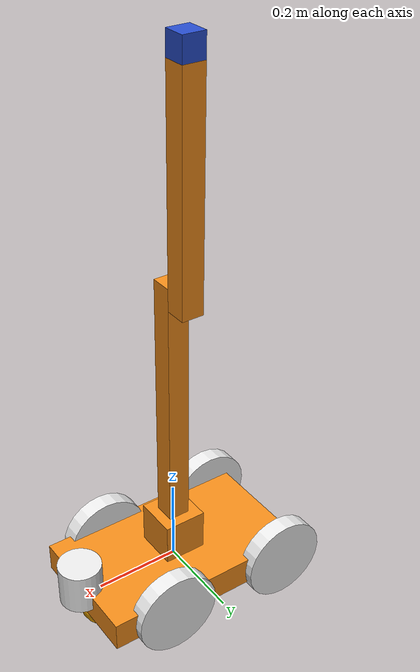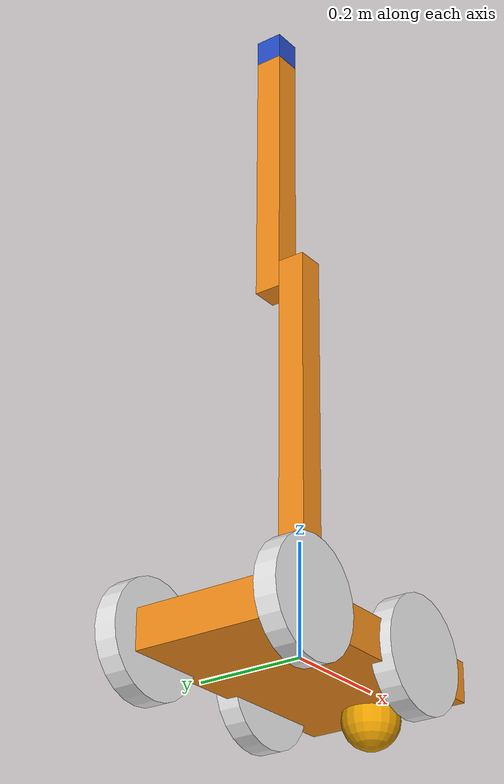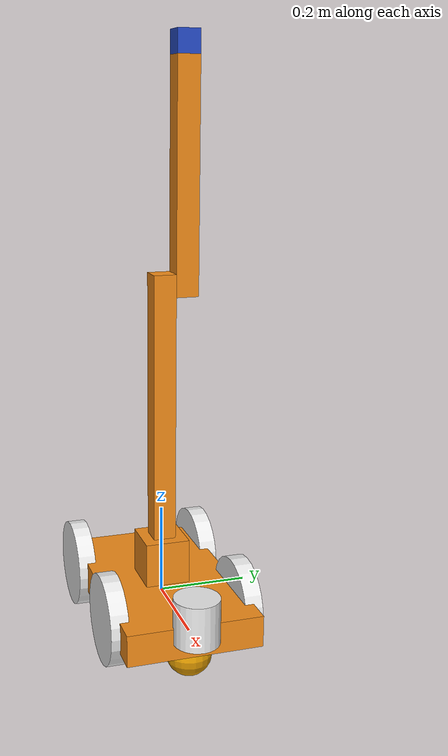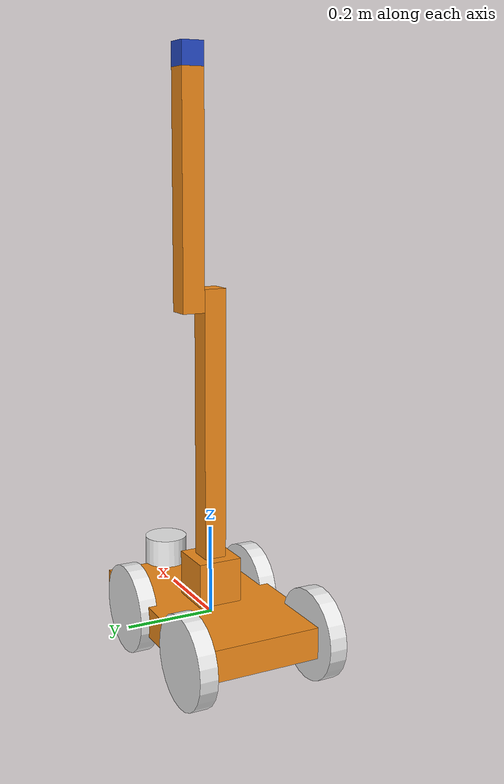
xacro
<?xml version="1.0"?>
<robot name="my_robot_xacro" xmlns:xacro="http://www.ros.org/wiki/xacro">

 <xacro:include filename="$(find assignment2)/urdf/my_robot.gazebo"/>
  <xacro:include filename="$(find assignment2)/urdf/materials.xacro" />

 <xacro:property name="length_wheel" value="0.04" />
 <xacro:property name="radius_wheel" value="0.1" />

<!-- Inertia values -->
<xacro:macro name="default_inertial" params="mass">
               <inertial>
                       <mass value="${mass}" />
                       <origin rpy="0 1.5707 1.5707" xyz="0 0 0"/>
                       <inertia ixx="0.000526666666667" ixy="0" ixz="0" iyy="0.000526666666667" iyz="0" izz="0.001"/>
               </inertial>
	</xacro:macro>
 <xacro:macro name="cylinder_inertia" params="mass r l">
    <inertia ixx="${mass*(3*r*r+l*l)/12}" ixy = "0" ixz = "0"
                iyy="${mass*(3*r*r+l*l)/12}" iyz = "0" izz="${mass*(r*r)/2}" />
 </xacro:macro>

 <!-- h(eight) d(epth) w(idth) -->
 <xacro:macro name="box_inertia" params="mass h d w">
    <inertia ixx="${mass*(h*h+d*d)/12}" ixy = "0" ixz = "0"
                iyy="${mass*(h*h+w*w)/12}" iyz = "0" izz="${mass*(d*d+w*w)/12}" />
 </xacro:macro>

 <xacro:macro name="wheel_geometry">
	<geometry>
       	<cylinder length="${length_wheel}" radius="${radius_wheel}"/>
     	</geometry>
 </xacro:macro>

 <link name="link_chassis">
    <!-- pose and inertial -->
    <pose>0 0 0.1 0 0 0</pose>
    <inertial>
      <mass value="30"/>
      <origin rpy="0 0 0" xyz="0 0 0.1"/>
      <xacro:box_inertia mass="30" h="0.07" d="0.3" w="0.5" />
    </inertial>
    <!-- body -->
    <collision name="collision_chassis">
    <!-- order: w(idth) d(epth) h(eight) -->
      <geometry>
        <box size="0.5 0.3 0.07"/>
      </geometry>
    </collision>
    <visual>
      <origin rpy="0 0 0" xyz="0 0 0"/>
      <geometry>
        <box size="0.5 0.3 0.07"/>
      </geometry>
      <material name="orange"/>
    </visual>

   <!-- caster front -->
    <collision name="caster_front_collision">
      <origin rpy=" 0 0 0" xyz="0.35 0 -0.05"/>
      <geometry>
        <sphere radius="0.05"/>
      </geometry>
    </collision>
    <visual name="caster_front_visual">
      <origin rpy=" 0 0 0" xyz="0.2 0 -0.05"/>
      <geometry>
        <sphere radius="0.05"/>
      </geometry>
    </visual>
  </link>

  <xacro:macro name="link_wheel" params="name">
          <link name="${name}">
              <inertial>
                <mass value="0.2"/>
                <origin rpy="0 1.5707 1.5707" xyz="0 0 0"/>
                <xacro:cylinder_inertia mass="0.2" r="0.1" l="0.04" />
              </inertial>
              <collision name="link_rightW_front_collision">
                <origin rpy="0 1.5707 1.5707" xyz="0 0 0"/>
                <xacro:wheel_geometry />
              </collision>
              <visual name="${name}_visual">
                <origin rpy="0 1.5707 1.5707" xyz="0 0 0"/>
                <xacro:wheel_geometry />
                <material name="white"/>
              </visual>
          </link>
      </xacro:macro>

   <!-- Create wheels -->

   <xacro:link_wheel name="link_rightW_front" />
   <xacro:link_wheel name="link_rightW_back" />
   <xacro:link_wheel name="link_leftW_front" />
   <xacro:link_wheel name="link_leftW_back" />

  <!-- arm definition -->

  <link name="base_link">
    <!-- body -->
    <inertial>
      <mass value="0.05"/>
      <origin rpy="0 0 0" xyz="0 0 0.05"/>
      <xacro:box_inertia mass="0.05" h="0.1" d="0.1" w="0.1" />
    </inertial>
    <collision name="collision_base_link">
      <geometry>
        <box size="0.1 0.1 0.1"/>
      </geometry>
    </collision>
    <visual>
      <origin rpy="0 0 0" xyz="0 0 0.05"/>
      <geometry>
        <box size="0.1 0.1 0.1"/>
      </geometry>
      <material name="orange"/>
    </visual>

  </link>

  <link name="link_1">
    <!-- body -->
    <inertial>
      <mass value="0.075"/>
      <origin rpy="0 0 0" xyz="0 0 0.3"/>
      <xacro:box_inertia mass="0.075" h="0.6" d="0.05" w="0.05" />
    </inertial>
    <collision name="collision_link_1">
      <geometry>
        <box size="0.05 0.05 0.6"/>
      </geometry>
    </collision>
    <visual>
      <origin rpy="0 0 0" xyz="0 0 0.3"/>
      <geometry>
        <box size="0.05 0.05 0.6"/>
      </geometry>
      <material name="orange"/>
    </visual>

  </link>

  <link name="link_2">
    <!-- body -->
    <inertial>
      <mass value="0.075"/>
      <origin rpy="0 0 0" xyz="0 0 0.25"/>
      <xacro:box_inertia mass="0.075" h="0.5" d="0.05" w="0.05" />
    </inertial>
    <collision name="link_2">
      <geometry>
        <box size="0.05 0.05 0.5"/>
      </geometry>
    </collision>
    <visual>
      <origin rpy="0 0 0" xyz="0 0 0.25"/>
      <geometry>
        <box size="0.05 0.05 0.5"/>
      </geometry>
      <material name="orange"/>
    </visual>

  </link>

 <!-- joints definition -->

 <joint name="joint_rightW_front" type="continuous">
     <origin rpy="0 0 0" xyz="0.1 0.15 0"/>
     <child link="link_rightW_front"/>
     <parent link="link_chassis"/>
     <axis rpy="0 0 0" xyz="0 1 0"/>
     <limit effort="10000" velocity="1000"/>
     <joint_properties damping="1.0" friction="1.0"/>
   </joint>

     <joint name="joint_rightW_rear" type="continuous">
     <origin rpy="0 0 0" xyz="-0.2 0.15 0"/>
     <child link="link_rightW_back"/>
     <parent link="link_chassis"/>
     <axis rpy="0 0 0" xyz="0 1 0"/>
     <limit effort="10000" velocity="1000"/>
     <joint_properties damping="1.0" friction="1.0"/>
   </joint>

   <joint name="joint_leftW_front" type="continuous">
     <origin rpy="0 0 0" xyz="0.1 -0.15 0"/>
     <child link="link_leftW_front"/>
     <parent link="link_chassis"/>
     <axis rpy="0 0 0" xyz="0 1 0"/>
     <limit effort="10000" velocity="1000"/>
     <joint_properties damping="1.0" friction="1.0"/>
   </joint>

   <joint name="joint_leftW_rear" type="continuous">
     <origin rpy="0 0 0" xyz="-0.2 -0.15 0"/>
     <child link="link_leftW_back"/>
     <parent link="link_chassis"/>
     <axis rpy="0 0 0" xyz="0 1 0"/>
     <limit effort="10000" velocity="1000"/>
     <joint_properties damping="1.0" friction="1.0"/>
   </joint>

  <joint name="joint_base_link" type="revolute">
    <origin rpy="0 0 0" xyz="0 0 0.035"/>
    <child link="base_link"/>
    <parent link="link_chassis"/>
    <axis rpy="0 0 0" xyz="0 0 1"/>
    <limit effort="10000" lower="0.0" upper="6.28" velocity="0.3"/>
    <joint_properties damping="1.0" friction="1.0"/>
  </joint>

  <joint name="joint_link_1" type="revolute">
    <origin rpy="0 0 0" xyz="0 0 0.1"/>
    <child link="link_1"/>
    <parent link="base_link"/>
    <axis rpy="0 0 0" xyz="0 1 0"/>
    <limit effort="10000" lower="-1.57" upper="1.57" velocity="0.3"/>
    <joint_properties damping="1.0" friction="1.0"/>
  </joint>

  <joint name="joint_link_2" type="revolute">
    <origin rpy="0 0 0" xyz="0 0.05 0.55"/>
    <child link="link_2"/>
    <parent link="link_1"/>
    <axis rpy="0 0 0" xyz="0 1 0"/>
    <limit effort="10000" lower="-3.14" upper="3.14" velocity="0.3"/>
    <joint_properties damping="1.0" friction="1.0"/>
  </joint>

  <!-- camera definition -->
  <link name="camera_link">
	<collision>
	  <origin xyz="0 0 0.025" rpy="0 0 0"/>
	  <geometry>
	    <box size="0.05 0.05 0.05"/>
	  </geometry>
	</collision>
	<visual>
	  <origin xyz="0 0 0.025" rpy="0 0 0"/>
	  <geometry>
	    <box size="0.05 0.05 0.05"/>
	  </geometry>
	  <material name="blue" />
	</visual>
	<inertial>
	  <mass value="1e-5" />
	  <origin xyz="0 0 0" rpy="0 0 0"/>
	  <inertia ixx="1e-6" ixy="0" ixz="0" iyy="1e-6" iyz="0" izz="1e-6" />
	</inertial>
  </link>

  <joint name="camera_joint" type="fixed">
	<axis xyz="0 1 0" />
	<origin xyz="0 0 0.5" rpy="0 0 0"/>
	<parent link="link_2"/>
	<child link="camera_link"/>
  </joint>

  <!-- laser-scanner definition -->

  <link name="hokuyo_link">
    <inertial>
      <origin xyz="0 0 0" rpy="0 0 0" />
      <mass value="1" />
      <xacro:cylinder_inertia mass="1" r="0.05" l="0.1" />
    </inertial>

    <visual>
      <origin xyz="0 0 0" rpy="0 0 0" />
      <geometry>
        <cylinder radius="0.05" length="0.1"/>
      </geometry>
      <material name="white" />
    </visual>

    <collision>
      <origin xyz="0 0 0" rpy="0 0 0"/>
      <geometry>
        <cylinder radius="0.05" length="0.1"/>
      </geometry>
    </collision>
  </link>

  <joint name="hokuyo_joint" type="fixed">
    <origin xyz="0.25 0 0.05" rpy="0 0 0"/>
    <parent link="link_chassis"/>
    <child link="hokuyo_link"/>
  </joint>

 <!-- transmissions definition -->

<transmission name="joint_base_link_trans">
	<type>transmission_interface/SimpleTransmission</type>
	<joint name="joint_base_link">
		<hardwareInterface>hardware_interface/EffortJointInterface</hardwareInterface>
	</joint>
	<actuator name="motor1">
		<hardwareInterface>hardware_interface/EffortJointInterface</hardwareInterface>
		<mechanicalInterface>1</mechanicalInterface>
	</actuator>
</transmission>

<transmission name="joint_link_1_trans">
	<type>transmission_interface/SimpleTransmission</type>
	<joint name="joint_link_1">
		<hardwareInterface>hardware_interface/EffortJointInterface</hardwareInterface>
	</joint>
	<actuator name="motor2">
		<hardwareInterface>hardware_interface/EffortJointInterface</hardwareInterface>
		<mechanicalInterface>1</mechanicalInterface>
	</actuator>
</transmission>

<transmission name="joint_link_2_trans">
	<type>transmission_interface/SimpleTransmission</type>
	<joint name="joint_link_2">
		<hardwareInterface>hardware_interface/EffortJointInterface</hardwareInterface>
	</joint>
	<actuator name="motor3">
		<hardwareInterface>hardware_interface/EffortJointInterface</hardwareInterface>
		<mechanicalInterface>1</mechanicalInterface>
	</actuator>
</transmission>

</robot>
